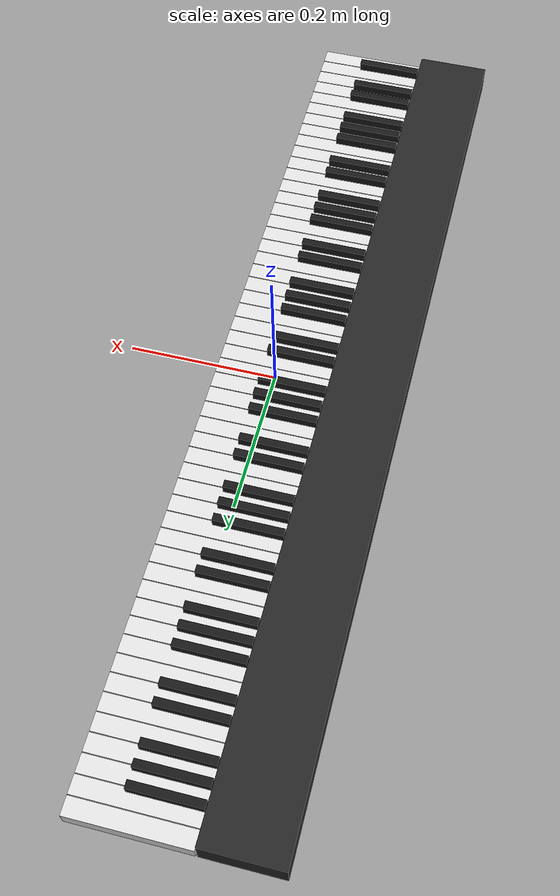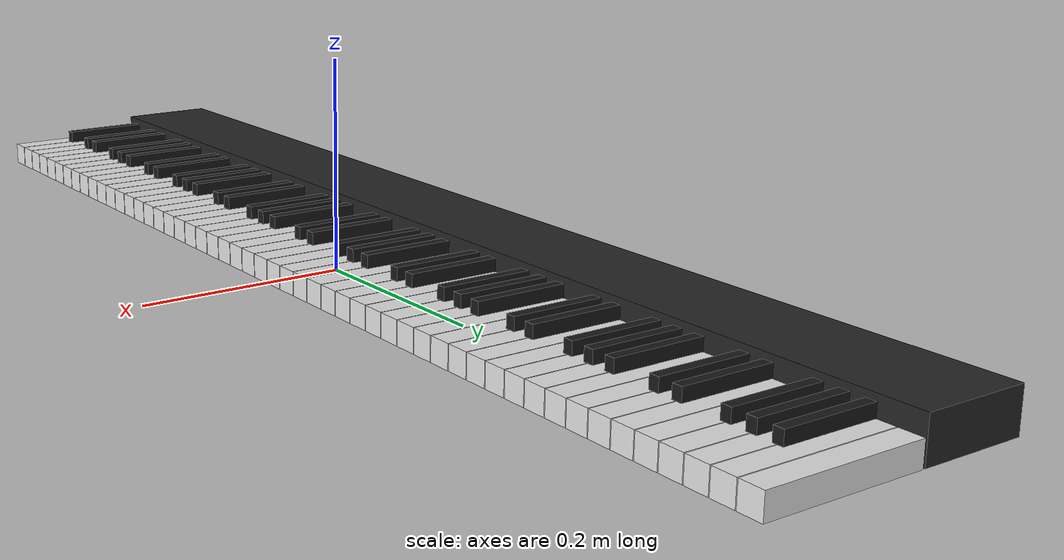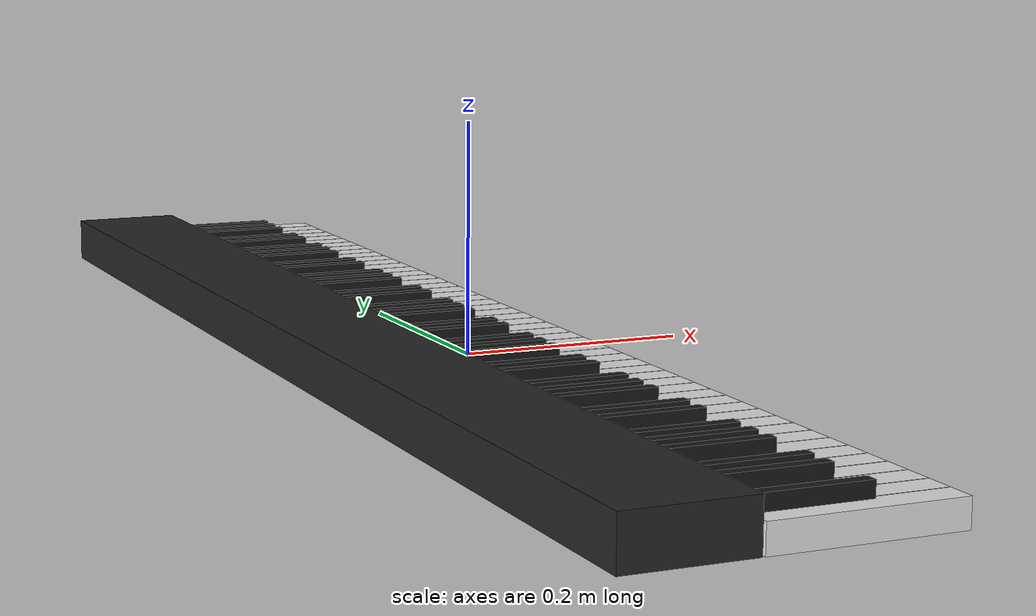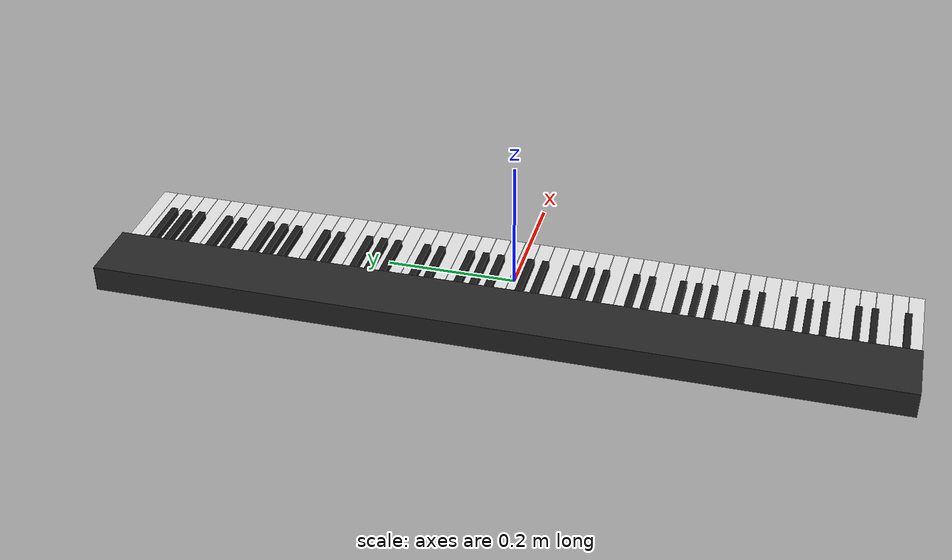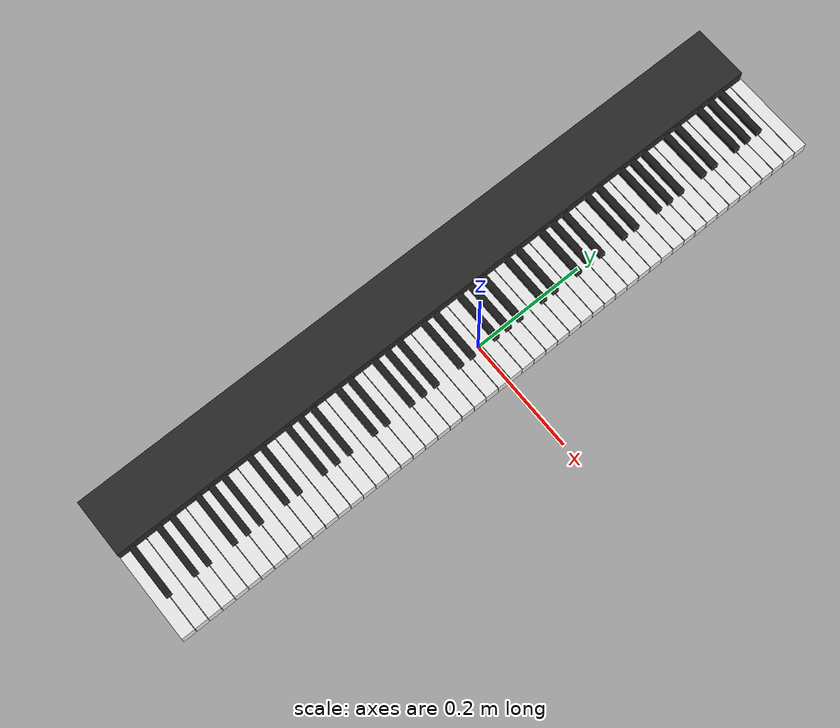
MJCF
<mujoco model="piano">
    <asset>
        <material name="key_white" rgba="0.9 0.9 0.9 1.0"/>
        <material name="key_black" rgba="0.1 0.1 0.1 1.0"/>
    </asset>

    <default>
        <geom type="box" contype="0" conaffinity="1" solref="0.01 1"/>
        <joint type="hinge" axis="0 1 0"/>
        <site type="box" group="4" rgba="1 0 0 1"/>
        <default class="white_key">
            <geom material="key_white" type="box" size="0.075 0.01125 0.01125" mass="0.04" contype="0" conaffinity="1"/>
            <site size="0.075 0.01125 0.01125"/>
            <joint pos="-0.075 0 0" damping="0.05" armature="0.001" stiffness="2" springref="-0.017453292519943295" range="0 0.06656816377582381"/>
        </default>

        <default class="black_key">
            <geom material="key_black" type="box" size="0.045 0.005 0.009" mass="0.02" contype="0" conaffinity="1"/>
            <site size="0.045 0.005 0.009"/>
            <joint pos="-0.045 0 0" damping="0.05" armature="0.001" stiffness="2" springref="-0.017453292519943295" range="0 0.08865588186743747"/>
        </default>
    </default>

    <worldbody>
        <body name="piano">
        <body name="base" pos="-0.127 0 0.02">
            <geom type="box" size="0.05 0.6105 0.02" rgba="0.15 0.15 0.15 1" contype="0" conaffinity="0"/>
        </body>
        <!-- # for each key ... 88 keys in totoal -->
        <body name="whit_key_0" pos="0 -0.59925 0.01125">
            <geom name="white_key_geom_0" class="white_key"/>
            <joint name="white_key_joint_0" class="white_key"/>
            <site name="whiter_key_site_0" class="white_key"/>
        </body>
        <body name="black_key_1" pos="-0.03 -0.5875 0.026">
            <geom name="black_key_geom_1" class="black_key"/>
            <joint name="black_key_joint_1" class="black_key"/>
            <site name="black_key_site_1" class="black_key"/>
        </body>
        <body name="white_key_2" pos="0 -0.57575 0.01125">
            <geom name="white_key_geom_2" class="white_key"/>
            <joint name="white_key_joint_2" class="white_key"/>
            <site name="whiter_key_site_2" class="white_key"/>
        </body>
        <body name="whit_key_3" pos="0 -0.55225 0.01125">
            <geom name="white_key_geom_3" class="white_key"/>
            <joint name="white_key_joint_3" class="white_key"/>
            <site name="whiter_key_site_3" class="white_key"/>
        </body>
        <body name="black_key_4" pos="-0.03 -0.54 0.026">
            <geom name="black_key_geom_4" class="black_key"/>
            <joint name="black_key_joint_4" class="black_key"/>
            <site name="black_key_site_4" class="black_key"/>
        </body>
        <body name="whit_key_5" pos="0 -0.52875 0.01125">
            <geom name="white_key_geom_5" class="white_key"/>
            <joint name="white_key_joint_5" class="white_key"/>
            <site name="whiter_key_site_5" class="white_key"/>
        </body>
        <body name="black_key_6" pos="-0.03 -0.5165 0.026">
            <geom name="black_key_geom_6" class="black_key"/>
            <joint name="black_key_joint_6" class="black_key"/>
            <site name="black_key_site_6" class="black_key"/>
        </body>
        <body name="whit_key_7" pos="0 -0.50525 0.01125">
            <geom name="white_key_geom_7" class="white_key"/>
            <joint name="white_key_joint_7" class="white_key"/>
            <site name="whiter_key_site_7" class="white_key"/>
        </body>
        <body name="whit_key_8" pos="0 -0.48175 0.01125">
            <geom name="white_key_geom_8" class="white_key"/>
            <joint name="white_key_joint_8" class="white_key"/>
            <site name="whiter_key_site_8" class="white_key"/>
        </body>
        <body name="black_key_9" pos="-0.03 -0.4695 0.026">
            <geom name="black_key_geom_9" class="black_key"/>
            <joint name="black_key_joint_9" class="black_key"/>
            <site name="black_key_site_9" class="black_key"/>
        </body>
        <body name="whit_key_10" pos="0 -0.45825 0.01125">
            <geom name="white_key_geom_10" class="white_key"/>
            <joint name="white_key_joint_10" class="white_key"/>
            <site name="whiter_key_site_10" class="white_key"/>
        </body>
        <body name="black_key_11" pos="-0.03 -0.446 0.026">
            <geom name="black_key_geom_11" class="black_key"/>
            <joint name="black_key_joint_11" class="black_key"/>
            <site name="black_key_site_11" class="black_key"/>
        </body>
        <body name="whit_key_12" pos="0 -0.43475 0.01125">
            <geom name="white_key_geom_12" class="white_key"/>
            <joint name="white_key_joint_12" class="white_key"/>
            <site name="whiter_key_site_12" class="white_key"/>
        </body>
        <body name="black_key_13" pos="-0.03 -0.4225 0.026">
            <geom name="black_key_geom_13" class="black_key"/>
            <joint name="black_key_joint_13" class="black_key"/>
            <site name="black_key_site_13" class="black_key"/>
        </body>
        <body name="whit_key_14" pos="0 -0.41125 0.01125">
            <geom name="white_key_geom_14" class="white_key"/>
            <joint name="white_key_joint_14" class="white_key"/>
            <site name="whiter_key_site_14" class="white_key"/>
        </body>
        <body name="whit_key_15" pos="0 -0.38775 0.01125">
            <geom name="white_key_geom_15" class="white_key"/>
            <joint name="white_key_joint_15" class="white_key"/>
            <site name="whiter_key_site_15" class="white_key"/>
        </body>
        <body name="black_key_16" pos="-0.03 -0.3755 0.026">
            <geom name="black_key_geom_16" class="black_key"/>
            <joint name="black_key_joint_16" class="black_key"/>
            <site name="black_key_site_16" class="black_key"/>
        </body>
        <body name="whit_key_17" pos="0 -0.36425 0.01125">
            <geom name="white_key_geom_17" class="white_key"/>
            <joint name="white_key_joint_17" class="white_key"/>
            <site name="whiter_key_site_17" class="white_key"/>
        </body>
        <body name="black_key_18" pos="-0.03 -0.352 0.026">
            <geom name="black_key_geom_18" class="black_key"/>
            <joint name="black_key_joint_18" class="black_key"/>
            <site name="black_key_site_18" class="black_key"/>
        </body>
        <body name="whit_key_19" pos="0 -0.34075 0.01125">
            <geom name="white_key_geom_19" class="white_key"/>
            <joint name="white_key_joint_19" class="white_key"/>
            <site name="whiter_key_site_19" class="white_key"/>
        </body>
        <body name="whit_key_20" pos="0 -0.31725 0.01125">
            <geom name="white_key_geom_20" class="white_key"/>
            <joint name="white_key_joint_20" class="white_key"/>
            <site name="whiter_key_site_20" class="white_key"/>
        </body>
        <body name="black_key_21" pos="-0.03 -0.305 0.026">
            <geom name="black_key_geom_21" class="black_key"/>
            <joint name="black_key_joint_21" class="black_key"/>
            <site name="black_key_site_21" class="black_key"/>
        </body>
        <body name="whit_key_22" pos="0 -0.2937 0.01125">
            <geom name="white_key_geom_22" class="white_key"/>
            <joint name="white_key_joint_22" class="white_key"/>
            <site name="whiter_key_site_22" class="white_key"/>
        </body>
        <body name="black_key_23" pos="-0.03 -0.2815 0.026">
            <geom name="black_key_geom_23" class="black_key"/>
            <joint name="black_key_joint_23" class="black_key"/>
            <site name="black_key_site_23" class="black_key"/>
        </body>
        <body name="whit_key_24" pos="0 -0.27025 0.01125">
            <geom name="white_key_geom_24" class="white_key"/>
            <joint name="white_key_joint_24" class="white_key"/>
            <site name="whiter_key_site_24" class="white_key"/>
        </body>
        <body name="black_key_25" pos="-0.03 -0.258 0.026">
            <geom name="black_key_geom_25" class="black_key"/>
            <joint name="black_key_joint_25" class="black_key"/>
            <site name="black_key_site_25" class="black_key"/>
        </body>
        <body name="whit_key_26" pos="0 -0.24675 0.01125">
            <geom name="white_key_geom_26" class="white_key"/>
            <joint name="white_key_joint_26" class="white_key"/>
            <site name="whiter_key_site_26" class="white_key"/>
        </body>
        <body name="whit_key_27" pos="0 -0.22325 0.01125">
            <geom name="white_key_geom_27" class="white_key"/>
            <joint name="white_key_joint_27" class="white_key"/>
            <site name="whiter_key_site_27" class="white_key"/>
        </body>
        <body name="black_key_28" pos="-0.03 -0.211 0.026">
            <geom name="black_key_geom_28" class="black_key"/>
            <joint name="black_key_joint_28" class="black_key"/>
            <site name="black_key_site_28" class="black_key"/>
        </body>
        <body name="whit_key_29" pos="0 -0.19975 0.01125">
            <geom name="white_key_geom_29" class="white_key"/>
            <joint name="white_key_joint_29" class="white_key"/>
            <site name="whiter_key_site_29" class="white_key"/>
        </body>
        <body name="black_key_30" pos="-0.03 -0.1875 0.026">
            <geom name="black_key_geom_30" class="black_key"/>
            <joint name="black_key_joint_30" class="black_key"/>
            <site name="black_key_site_30" class="black_key"/>
        </body>
        <body name="whit_key_31" pos="0 -0.17625 0.01125">
            <geom name="white_key_geom_31" class="white_key"/>
            <joint name="white_key_joint_31" class="white_key"/>
            <site name="whiter_key_site_31" class="white_key"/>
        </body>
        <body name="whit_key_32" pos="0 -0.15275 0.01125">
            <geom name="white_key_geom_32" class="white_key"/>
            <joint name="white_key_joint_32" class="white_key"/>
            <site name="whiter_key_site_32" class="white_key"/>
        </body>
        <body name="black_key_33" pos="-0.03 -0.1405 0.026">
            <geom name="black_key_geom_33" class="black_key"/>
            <joint name="black_key_joint_33" class="black_key"/>
            <site name="black_key_site_33" class="black_key"/>
        </body>
        <body name="whit_key_34" pos="0 -0.12925 0.01125">
            <geom name="white_key_geom_34" class="white_key"/>
            <joint name="white_key_joint_34" class="white_key"/>
            <site name="whiter_key_site_34" class="white_key"/>
        </body>
        <body name="black_key_35" pos="-0.03 -0.117 0.026">
            <geom name="black_key_geom_35" class="black_key"/>
            <joint name="black_key_joint_35" class="black_key"/>
            <site name="black_key_site_35" class="black_key"/>
        </body>
        <body name="whit_key_36" pos="0 -0.10575 0.01125">
            <geom name="white_key_geom_36" class="white_key"/>
            <joint name="white_key_joint_36" class="white_key"/>
            <site name="whiter_key_site_36" class="white_key"/>
        </body>
        <body name="black_key_37" pos="-0.03 -0.0935 0.026">
            <geom name="black_key_geom_37" class="black_key"/>
            <joint name="black_key_joint_37" class="black_key"/>
            <site name="black_key_site_37" class="black_key"/>
        </body>
        <body name="whit_key_38" pos="0 -0.08225 0.01125">
            <geom name="white_key_geom_38" class="white_key"/>
            <joint name="white_key_joint_38" class="white_key"/>
            <site name="whiter_key_site_38" class="white_key"/>
        </body>
        <body name="whit_key_39" pos="0 -0.05875 0.01125">
            <geom name="white_key_geom_39" class="white_key"/>
            <joint name="white_key_joint_39" class="white_key"/>
            <site name="whiter_key_site_39" class="white_key"/>
        </body>
        <body name="black_key_40" pos="-0.03 -0.046 0.026">
            <geom name="black_key_geom_40" class="black_key"/>
            <joint name="black_key_joint_40" class="black_key"/>
            <site name="black_key_site_40" class="black_key"/>
        </body>
        <body name="whit_key_41" pos="0 -0.03525 0.01125">
            <geom name="white_key_geom_41" class="white_key"/>
            <joint name="white_key_joint_41" class="white_key"/>
            <site name="whiter_key_site_41" class="white_key"/>
        </body>
        <body name="black_key_42" pos="-0.03 -0.023 0.026">
            <geom name="black_key_geom_42" class="black_key"/>
            <joint name="black_key_joint_42" class="black_key"/>
            <site name="black_key_site_42" class="black_key"/>
        </body>
        <body name="whit_key_43" pos="0 -0.01175 0.01125">
            <geom name="white_key_geom_43" class="white_key"/>
            <joint name="white_key_joint_43" class="white_key"/>
            <site name="whiter_key_site_43" class="white_key"/>
        </body>
        <body name="whit_key_44" pos="0 0.01175 0.01125">
            <geom name="white_key_geom_44" class="white_key"/>
            <joint name="white_key_joint_44" class="white_key"/>
            <site name="whiter_key_site_44" class="white_key"/>
        </body>
        <body name="black_key_45" pos="-0.03 0.024 0.026">
            <geom name="black_key_geom_45" class="black_key"/>
            <joint name="black_key_joint_45" class="black_key"/>
            <site name="black_key_site_45" class="black_key"/>
        </body>
        <body name="whit_key_46" pos="0 0.03525 0.01125">
            <geom name="white_key_geom_46" class="white_key"/>
            <joint name="white_key_joint_46" class="white_key"/>
            <site name="whiter_key_site_46" class="white_key"/>
        </body>
        <body name="black_key_47" pos="-0.03 0.0475 0.026">
            <geom name="black_key_geom_47" class="black_key"/>
            <joint name="black_key_joint_47" class="black_key"/>
            <site name="black_key_site_47" class="black_key"/>
        </body>
        <body name="whit_key_48" pos="0 0.05875 0.01125">
            <geom name="white_key_geom_48" class="white_key"/>
            <joint name="white_key_joint_48" class="white_key"/>
            <site name="whiter_key_site_48" class="white_key"/>
        </body>
        <body name="black_key_49" pos="-0.03 0.071 0.026">
            <geom name="black_key_geom_49" class="black_key"/>
            <joint name="black_key_joint_49" class="black_key"/>
            <site name="black_key_site_49" class="black_key"/>
        </body>
        <body name="whit_key_50" pos="0 0.08225 0.01125">
            <geom name="white_key_geom_50" class="white_key"/>
            <joint name="white_key_joint_50" class="white_key"/>
            <site name="whiter_key_site_50" class="white_key"/>
        </body>
        <body name="whit_key_51" pos="0 0.10575 0.01125">
            <geom name="white_key_geom_51" class="white_key"/>
            <joint name="white_key_joint_51" class="white_key"/>
            <site name="whiter_key_site_51" class="white_key"/>
        </body>
        <body name="black_key_52" pos="-0.03 0.118 0.026">
            <geom name="black_key_geom_52" class="black_key"/>
            <joint name="black_key_joint_52" class="black_key"/>
            <site name="black_key_site_52" class="black_key"/>
        </body>
        <body name="whit_key_53" pos="0 0.12925 0.01125">
            <geom name="white_key_geom_53" class="white_key"/>
            <joint name="white_key_joint_53" class="white_key"/>
            <site name="whiter_key_site_53" class="white_key"/>
        </body>
        <body name="black_key_54" pos="-0.03 0.1415 0.026">
            <geom name="black_key_geom_54" class="black_key"/>
            <joint name="black_key_joint_54" class="black_key"/>
            <site name="black_key_site_54" class="black_key"/>
        </body>
        <body name="whit_key_55" pos="0 0.15275 0.01125">
            <geom name="white_key_geom_55" class="white_key"/>
            <joint name="white_key_joint_55" class="white_key"/>
            <site name="whiter_key_site_55" class="white_key"/>
        </body>
        <body name="whit_key_56" pos="0 0.17625 0.01125">
            <geom name="white_key_geom_56" class="white_key"/>
            <joint name="white_key_joint_56" class="white_key"/>
            <site name="whiter_key_site_56" class="white_key"/>
        </body>
        <body name="black_key_57" pos="-0.03 0.1885 0.026">
            <geom name="black_key_geom_57" class="black_key"/>
            <joint name="black_key_joint_57" class="black_key"/>
            <site name="black_key_site_57" class="black_key"/>
        </body>
        <body name="whit_key_58" pos="0 0.19975 0.01125">
            <geom name="white_key_geom_58" class="white_key"/>
            <joint name="white_key_joint_58" class="white_key"/>
            <site name="whiter_key_site_58" class="white_key"/>
        </body>
        <body name="black_key_59" pos="-0.03 0.212 0.026">
            <geom name="black_key_geom_59" class="black_key"/>
            <joint name="black_key_joint_59" class="black_key"/>
            <site name="black_key_site_59" class="black_key"/>
        </body>
        <body name="whit_key_60" pos="0 0.22325 0.01125">
            <geom name="white_key_geom_60" class="white_key"/>
            <joint name="white_key_joint_60" class="white_key"/>
            <site name="whiter_key_site_60" class="white_key"/>
        </body>
        <body name="black_key_61" pos="-0.03 0.2355 0.026">
            <geom name="black_key_geom_61" class="black_key"/>
            <joint name="black_key_joint_61" class="black_key"/>
            <site name="black_key_site_61" class="black_key"/>
        </body>
        <body name="whit_key_62" pos="0 0.24675 0.01125">
            <geom name="white_key_geom_62" class="white_key"/>
            <joint name="white_key_joint_62" class="white_key"/>
            <site name="whiter_key_site_62" class="white_key"/>
        </body>
        <body name="whit_key_63" pos="0 0.27025 0.01125">
            <geom name="white_key_geom_63" class="white_key"/>
            <joint name="white_key_joint_63" class="white_key"/>
            <site name="whiter_key_site_63" class="white_key"/>
        </body>
        <body name="black_key_64" pos="-0.03 0.2825 0.026">
            <geom name="black_key_geom_64" class="black_key"/>
            <joint name="black_key_joint_64" class="black_key"/>
            <site name="black_key_site_64" class="black_key"/>
        </body>
        <body name="whit_key_65" pos="0 0.29375 0.01125">
            <geom name="white_key_geom_65" class="white_key"/>
            <joint name="white_key_joint_65" class="white_key"/>
            <site name="whiter_key_site_65" class="white_key"/>
        </body>
        <body name="black_key_66" pos="-0.03 0.306 0.026">
            <geom name="black_key_geom_66" class="black_key"/>
            <joint name="black_key_joint_66" class="black_key"/>
            <site name="black_key_site_66" class="black_key"/>
        </body>
        <body name="whit_key_67" pos="0 0.31725 0.01125">
            <geom name="white_key_geom_67" class="white_key"/>
            <joint name="white_key_joint_67" class="white_key"/>
            <site name="whiter_key_site_67" class="white_key"/>
        </body>
        <body name="whit_key_68" pos="0 0.34075 0.01125">
            <geom name="white_key_geom_68" class="white_key"/>
            <joint name="white_key_joint_68" class="white_key"/>
            <site name="whiter_key_site_68" class="white_key"/>
        </body>
        <body name="black_key_69" pos="-0.03 0.353 0.026">
            <geom name="black_key_geom_69" class="black_key"/>
            <joint name="black_key_joint_69" class="black_key"/>
            <site name="black_key_site_69" class="black_key"/>
        </body>
        <body name="whit_key_70" pos="0 0.36425 0.01125">
            <geom name="white_key_geom_70" class="white_key"/>
            <joint name="white_key_joint_70" class="white_key"/>
            <site name="whiter_key_site_70" class="white_key"/>
        </body>
        <body name="black_key_71" pos="-0.03 0.3765 0.026">
            <geom name="black_key_geom_71" class="black_key"/>
            <joint name="black_key_joint_71" class="black_key"/>
            <site name="black_key_site_71" class="black_key"/>
        </body>
        <body name="whit_key_72" pos="0 0.38775 0.01125">
            <geom name="white_key_geom_72" class="white_key"/>
            <joint name="white_key_joint_72" class="white_key"/>
            <site name="whiter_key_site_72" class="white_key"/>
        </body>
        <body name="black_key_73" pos="-0.03 0.4 0.026">
            <geom name="black_key_geom_73" class="black_key"/>
            <joint name="black_key_joint_73" class="black_key"/>
            <site name="black_key_site_73" class="black_key"/>
        </body>
        <body name="whit_key_74" pos="0 0.41125 0.01125">
            <geom name="white_key_geom_74" class="white_key"/>
            <joint name="white_key_joint_74" class="white_key"/>
            <site name="whiter_key_site_74" class="white_key"/>
        </body>
        <body name="whit_key_75" pos="0 0.43475 0.01125">
            <geom name="white_key_geom_75" class="white_key"/>
            <joint name="white_key_joint_75" class="white_key"/>
            <site name="whiter_key_site_75" class="white_key"/>
        </body>
        <body name="black_key_76" pos="-0.03 0.447 0.026">
            <geom name="black_key_geom_76" class="black_key"/>
            <joint name="black_key_joint_76" class="black_key"/>
            <site name="black_key_site_76" class="black_key"/>
        </body>
        <body name="whit_key_77" pos="0 0.45825 0.01125">
            <geom name="white_key_geom_77" class="white_key"/>
            <joint name="white_key_joint_77" class="white_key"/>
            <site name="whiter_key_site_77" class="white_key"/>
        </body>
        <body name="black_key_78" pos="-0.03 0.4705 0.026">
            <geom name="black_key_geom_78" class="black_key"/>
            <joint name="black_key_joint_78" class="black_key"/>
            <site name="black_key_site_78" class="black_key"/>
        </body>
        <body name="whit_key_79" pos="0 0.48175 0.01125">
            <geom name="white_key_geom_79" class="white_key"/>
            <joint name="white_key_joint_79" class="white_key"/>
            <site name="whiter_key_site_79" class="white_key"/>
        </body>
        <body name="whit_key_80" pos="0 0.50525 0.01125">
            <geom name="white_key_geom_80" class="white_key"/>
            <joint name="white_key_joint_80" class="white_key"/>
            <site name="whiter_key_site_80" class="white_key"/>
        </body>
        <body name="black_key_81" pos="-0.03 0.5175 0.026">
            <geom name="black_key_geom_81" class="black_key"/>
            <joint name="black_key_joint_81" class="black_key"/>
            <site name="black_key_site_81" class="black_key"/>
        </body>
        <body name="whit_key_82" pos="0 0.52875 0.01125">
            <geom name="white_key_geom_82" class="white_key"/>
            <joint name="white_key_joint_82" class="white_key"/>
            <site name="whiter_key_site_82" class="white_key"/>
        </body>
        <body name="black_key_83" pos="-0.03 0.541 0.026">
            <geom name="black_key_geom_83" class="black_key"/>
            <joint name="black_key_joint_83" class="black_key"/>
            <site name="black_key_site_83" class="black_key"/>
        </body>
        <body name="whit_key_84" pos="0 0.55225 0.01125">
            <geom name="white_key_geom_84" class="white_key"/>
            <joint name="white_key_joint_84" class="white_key"/>
            <site name="whiter_key_site_84" class="white_key"/>
        </body>
        <body name="black_key_85" pos="-0.03 0.5645 0.026">
            <geom name="black_key_geom_85" class="black_key"/>
            <joint name="black_key_joint_85" class="black_key"/>
            <site name="black_key_site_85" class="black_key"/>
        </body>
        <body name="whit_key_86" pos="0 0.57575 0.01125">
            <geom name="white_key_geom_86" class="white_key"/>
            <joint name="white_key_joint_86" class="white_key"/>
            <site name="whiter_key_site_86" class="white_key"/>
        </body>
        <body name="whit_key_87" pos="0 0.59925 0.01125">
            <geom name="white_key_geom_87" class="white_key"/>
            <joint name="white_key_joint_87" class="white_key"/>
            <site name="whiter_key_site_87" class="white_key"/>
        </body>
        </body>
    </worldbody>
</mujoco>
